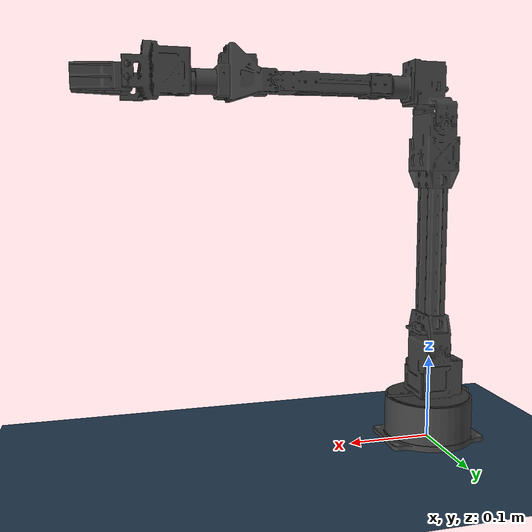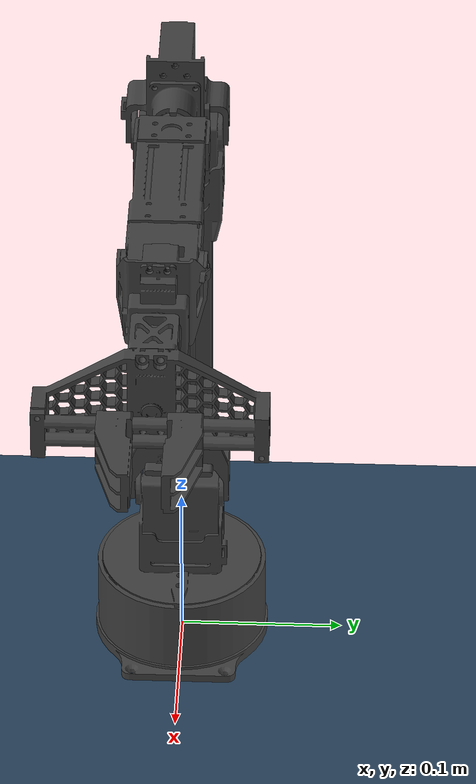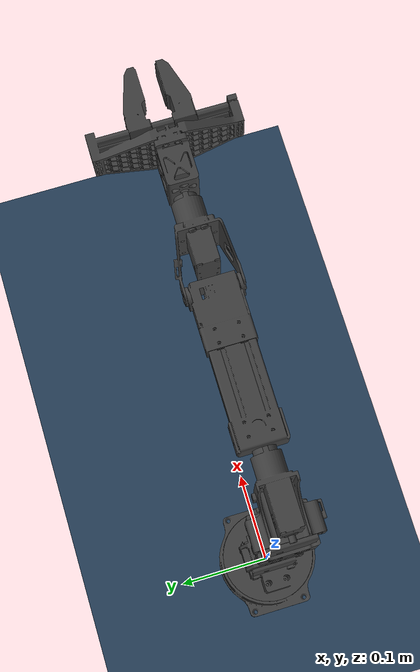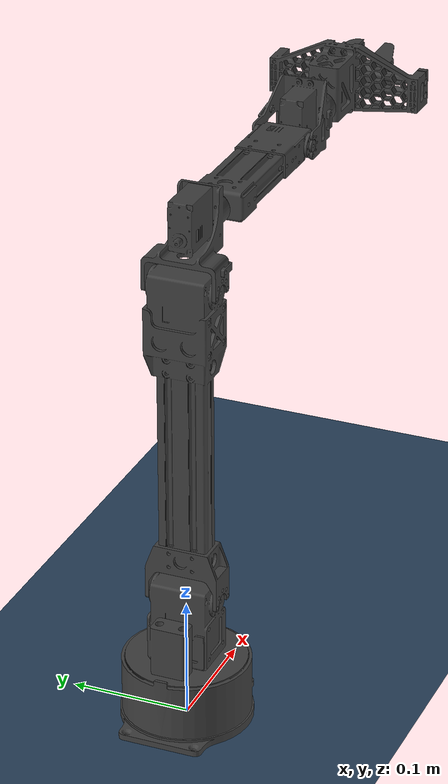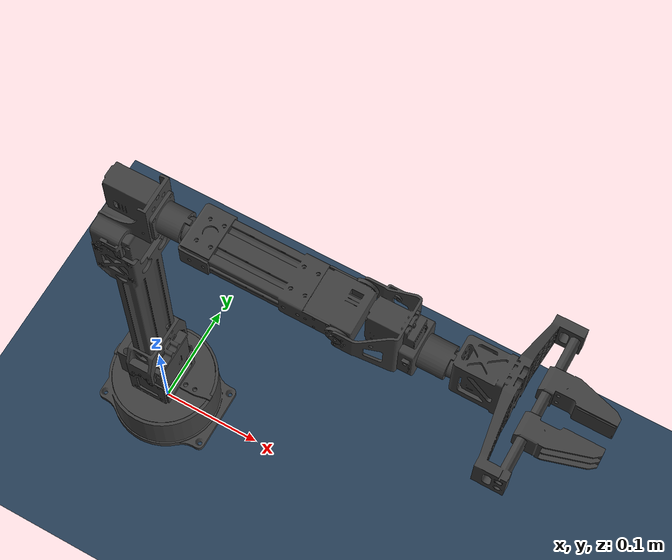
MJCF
<mujoco model="d1_control">
  <include file="d1.xml"/>

  <default>
    <joint armature="0.05" damping="0.1"/>
  </default>

  <actuator>
    <position name="ctrl_joint1" joint="joint1" kp="20" kv="2.0" forcerange="-3.3 3.3"/>
    <position name="ctrl_joint2" joint="joint2" kp="20" kv="2.0" forcerange="-3.3 3.3"/>

    <position name="ctrl_joint3" joint="joint3" kp="20" kv="2.0" forcerange="-1.7 1.7"/>
    <position name="ctrl_joint4" joint="joint4" kp="20" kv="2.0" forcerange="-1.7 1.7"/>
    <position name="ctrl_joint5" joint="joint5" kp="20" kv="2.0" forcerange="-1.7 1.7"/>
    <position name="ctrl_joint6" joint="joint6" kp="20" kv="2.0" forcerange="-1.7 1.7"/>

    <position name="ctrl_gripper" joint="left_finger" kp="20" kv="2.0" forcerange="-1.7 1.7"/>
  </actuator>

  <statistic center="0 0 0.1" extent="0.8"/>

  <visual>
    <headlight diffuse="0.6 0.6 0.6" ambient="0.3 0.3 0.3" specular="0 0 0"/>
    <rgba haze="0.15 0.25 0.35 1"/>
    <global azimuth="-130" elevation="-20"/>
  </visual>

  <asset>
    <texture type="skybox" builtin="gradient" rgb1="0.3 0.5 0.7" rgb2="0 0 0" width="512" height="3072"/>
    <texture type="2d" name="groundplane" builtin="checker" mark="edge" rgb1="0.2 0.3 0.4" rgb2="0.1 0.2 0.3"
      markrgb="0.8 0.8 0.8" width="300" height="300"/>
    <material name="groundplane" texture="groundplane" texuniform="true" texrepeat="5 5" reflectance="0.2"/>
  </asset>

  <worldbody>
    <light pos="0 0 1.5" dir="0 0 -1" directional="true"/>
    <geom name="floor" size="0 0 0.05" type="plane" material="groundplane"/>
  </worldbody>
</mujoco>

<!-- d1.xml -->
<mujoco model="d1">
  <compiler angle="radian" meshdir="assets"/>

  <default>
    <default class="d1">
      <site group="5" size="0.005" rgba="0 1 0 1"/>
      <joint axis="0 0 1"/>
      <default class="visual">
        <geom type="mesh" contype="0" conaffinity="0" density="0" group="2" material="black"/>
      </default>
      <default class="collision">
        <geom group="3" type="mesh"/>
      </default>
      <default class="finger">
        <joint type="slide"/>
      </default>
    </default>
  </default>

  <asset>
    <material name="black" rgba="0.25 0.25 0.25 1"/>
    <material name="white" rgba="0.9 0.9 0.9 1"/>

    <mesh file="base_link.obj"/>
    <mesh file="Link1.obj"/>
    <mesh file="Link2.obj"/>
    <mesh file="Link3.obj"/>
    <mesh file="Link4.obj"/>
    <mesh file="Link5.obj"/>
    <mesh file="Link6.obj"/>
    <mesh file="Link7_1.obj"/>
    <mesh file="Link7_2.obj"/>
  </asset>

  <worldbody>
    <body name="arm" childclass="d1">
      <inertial pos="-0.00048697 -2.9605E-12 0.017142" mass="0.077233" fullinertia="0.00010316 0.00011888 0.00018362 -1.0285E-14 2.0449E-07 7.3026E-15"/>
      <geom class="visual" mesh="base_link"/>
      <geom class="collision" mesh="base_link"/>

      <body name="link_1" pos="0 0 0.0533" quat="-3.67321e-06 0 0 -1">
        <inertial pos="0.0024649 0.00010517 0.032696" quat="0.999717 -0.0236435 -0.00169588 -0.00221682" mass="0.13174" diaginertia="6.72365e-05 5.41766e-05 4.66199e-05"/>
        <joint name="joint1" type="hinge" axis="0 0 1" range="-2.35 2.35"/>
        <geom class="visual" mesh="Link1"/>
        <geom class="collision" mesh="Link1" contype="0" conaffinity="0"/>

        <body name="link_2" pos="0 0.028 0.0563" quat="-2.59734e-06 -2.59735e-06 -0.707108 -0.707105">
          <inertial pos="0.0002018 0.19201 -0.027007" quat="0.706347 0.707865 -0.00093681 0.00051949" mass="0.20213" diaginertia="0.00025682 0.000229681 6.33062e-05"/>
          <joint name="joint2" axis="0 0 -1" range="-1.57 1.57"/>
          <geom class="visual" mesh="Link2"/>
          <geom class="collision" mesh="Link2"/>

          <body name="link_3" pos="0 0.2693 0.0009">
            <inertial pos="0.015164 0.044482 -0.027461" quat="0.690744 0.690771 -0.151176 -0.151179" mass="0.0629" diaginertia="1.84718e-05 1.4964e-05 1.13662e-05"/>
            <joint name="joint3" axis="0 0 -1" range="-1.57 1.57"/>
            <geom class="visual" mesh="Link3"/>
            <geom class="collision" mesh="Link3"/>

            <body name="link_4" pos="0.0577 0.042 -0.0275" quat="0.499998 -0.5 0.500002 -0.5">
              <inertial pos="-0.00029556 -0.00016104 0.091339" quat="0.999998 -3.46195e-05 0.00170171 0.00102754" mass="0.083332" diaginertia="3.93083e-05 3.4378e-05 1.15967e-05"/>
              <joint name="joint4" axis="0 0 1" range="-2.35 2.35"/>
              <geom class="visual" mesh="Link4"/>
              <geom class="collision" mesh="Link4"/>

              <body name="link_5" pos="-0.0001 -0.0237 0.14018" quat="0.499998 0.5 -0.5 0.500002">
                <inertial pos="0.040573 0.0062891 -0.023838" quat="0.706153 0.706691 -0.0310982 -0.0311281" mass="0.053817" diaginertia="1.31069e-05 1.1049e-05 8.59523e-06"/>
                <joint name="joint5" axis="0 0 -1" range="-1.57 1.57"/>
                <geom class="visual" mesh="Link5"/>
                <geom class="collision" mesh="Link5"/>

                <body name="link_6" pos="0.0825 -0.0010782 -0.023822" quat="0.499998 -0.5 0.500002 -0.5">
                  <inertial pos="-0.0068528 -3.9973e-06 0.039705" quat="0.494949 0.495288 -0.504676 0.504992" mass="0.077892" diaginertia="4.8843e-05 3.8232e-05 1.7707e-05"/>
                  <joint name="joint6" axis="0 0 -1" range="-2.35 2.35"/>
                  <geom class="visual" mesh="Link6"/>
                  <geom class="collision" mesh="Link6"/>

                  <site name="tcp_site" pos="0 0 0.1247" quat="1 0 0 -1"/>
                  <site name="grasp_site" pos="0 0 0.1247" quat="1 0 0 -1"/>

                  <body name="link_left_finger" pos="-0.0056012 -0.029636 0.0706" quat="0.499848 -0.50015 -0.49985 -0.500152">
                    <inertial pos="0.018927 0.006 0.012082" quat="0 0.677073 0 0.735916" mass="0.015046" diaginertia="2.62715e-06 2.0229e-06 1.25975e-06"/>
                    <joint name="left_finger" axis="0 0 -1" range="0 0.03" class="finger"/>
                    <geom class="visual" mesh="Link7_1"/>
                    <geom class="collision" mesh="Link7_1"/>
                  </body>

                  <body name="link_right_finger" pos="-0.0056388 0.02964 0.0706" quat="0.500148 0.49985 -0.50015 0.499852">
                    <inertial pos="0.018927 -0.006 0.012082" quat="0 0.677073 0 0.735916" mass="0.015046" diaginertia="2.62715e-06 2.0229e-06 1.25975e-06"/>
                    <joint name="right_finger" axis="0 0 1" range="-0.03 0" class="finger"/>
                    <geom class="visual" mesh="Link7_2"/>
                    <geom class="collision" mesh="Link7_2"/>
                  </body>

                </body>
              </body>
            </body>
          </body>
        </body>
      </body>
    </body>
  </worldbody>

  <equality>
    <joint joint1="left_finger" joint2="right_finger" polycoef="0 -1 0 0 0"/>
  </equality>
</mujoco>
